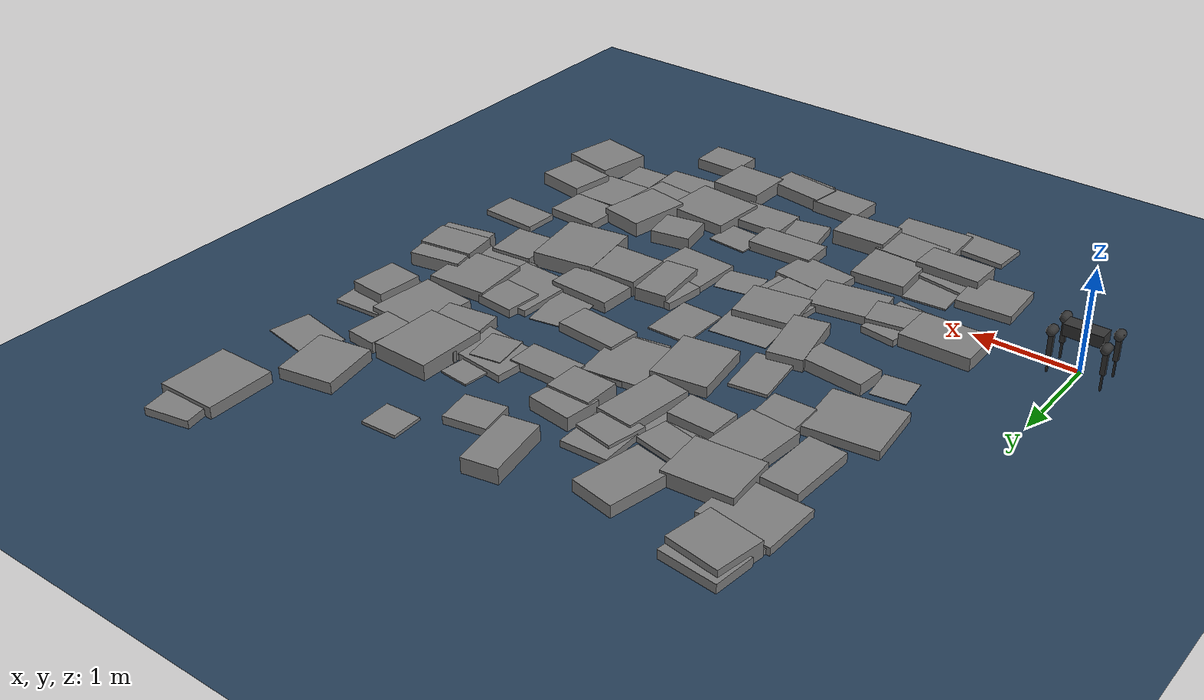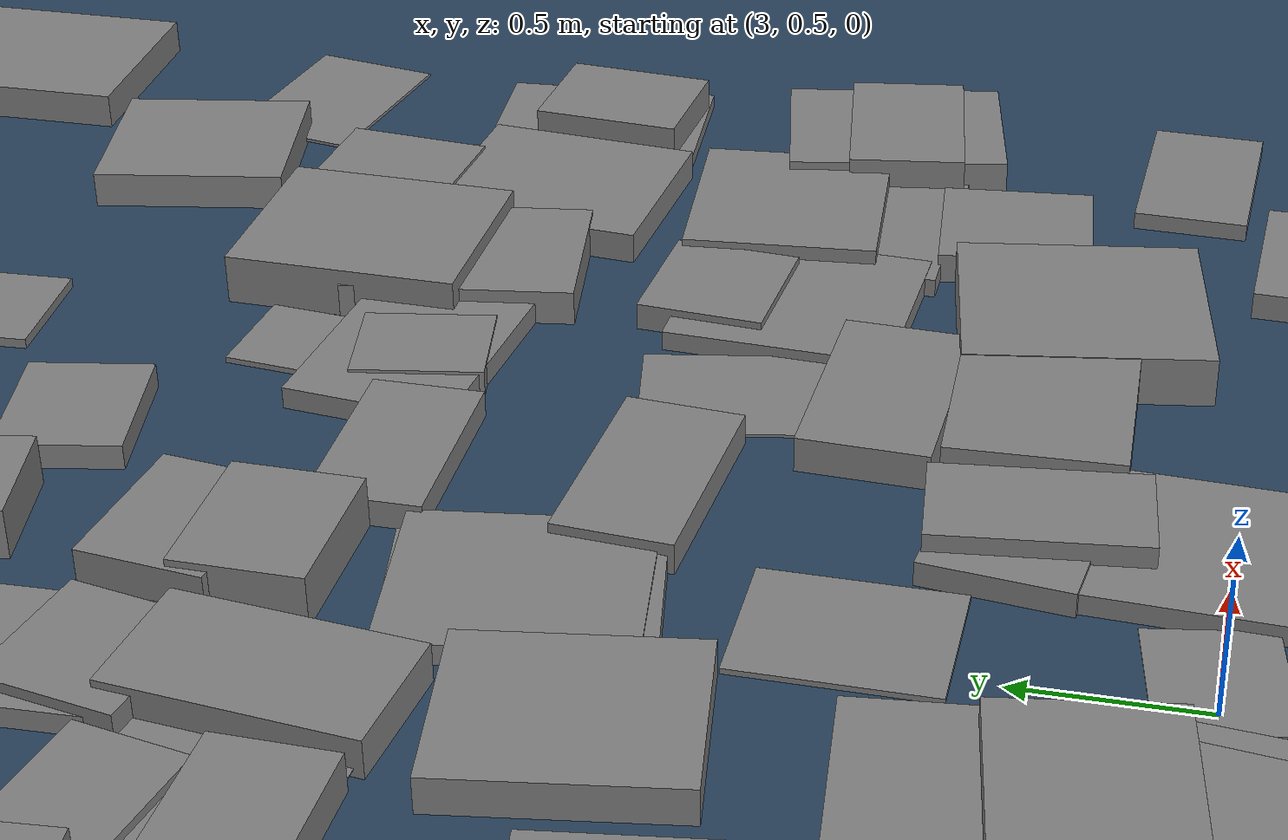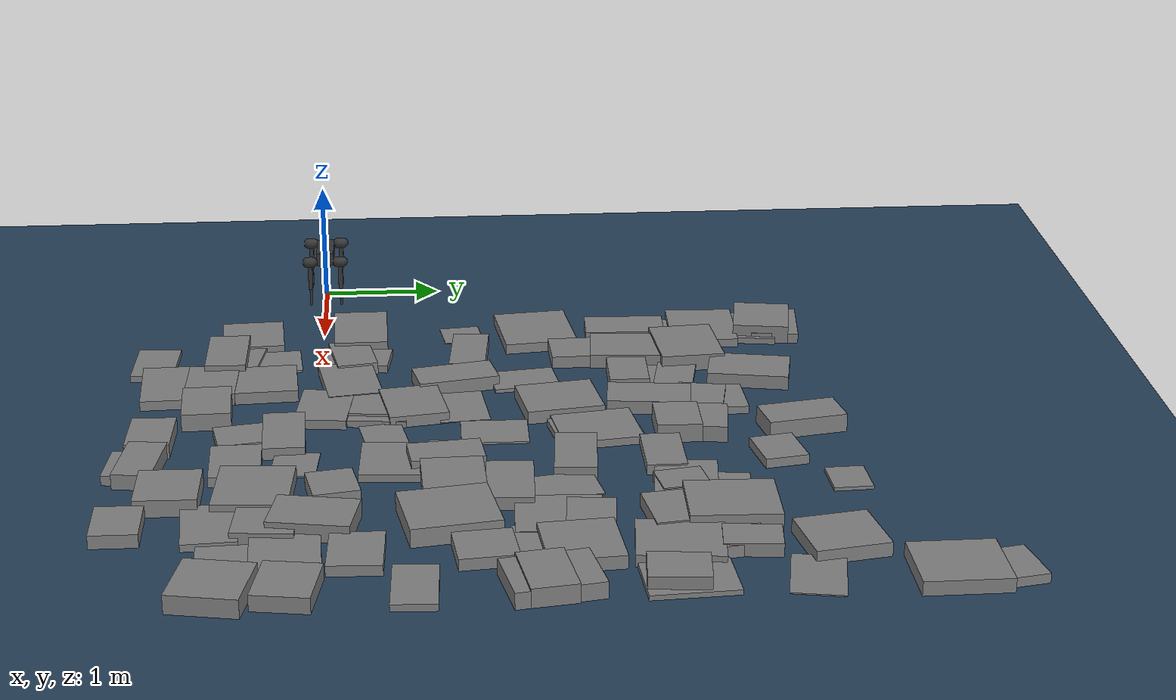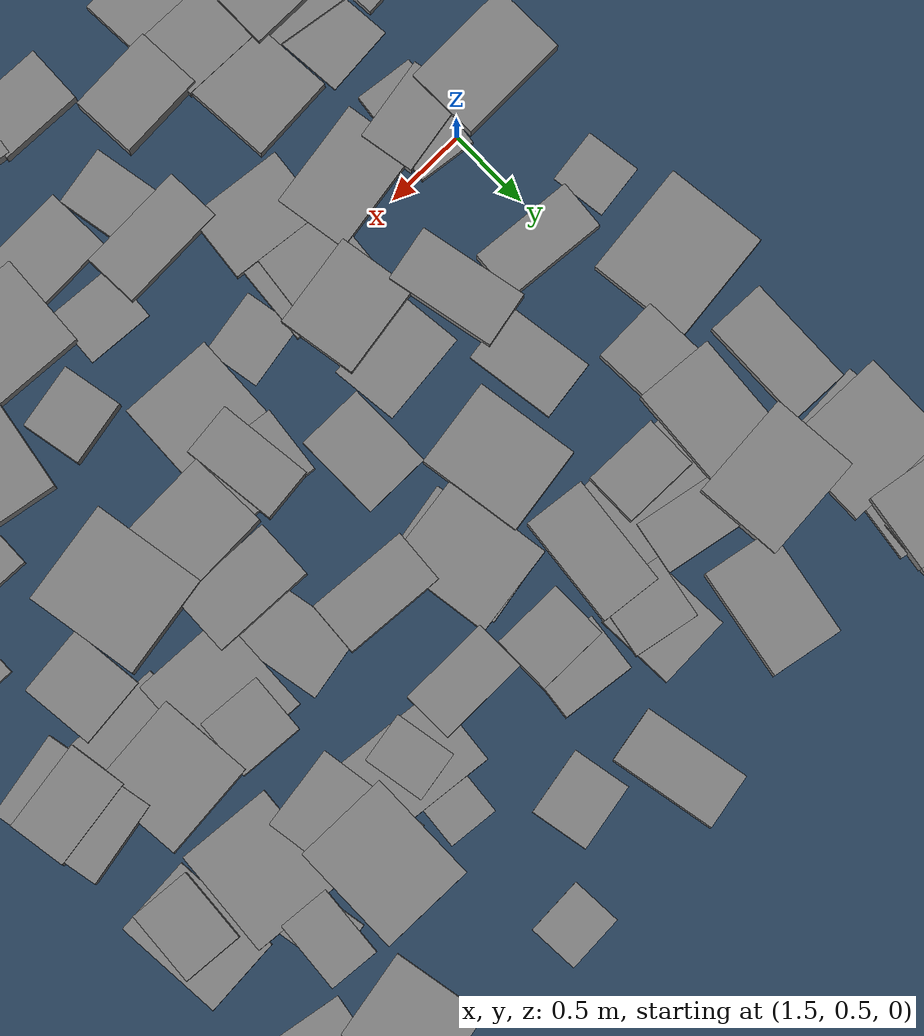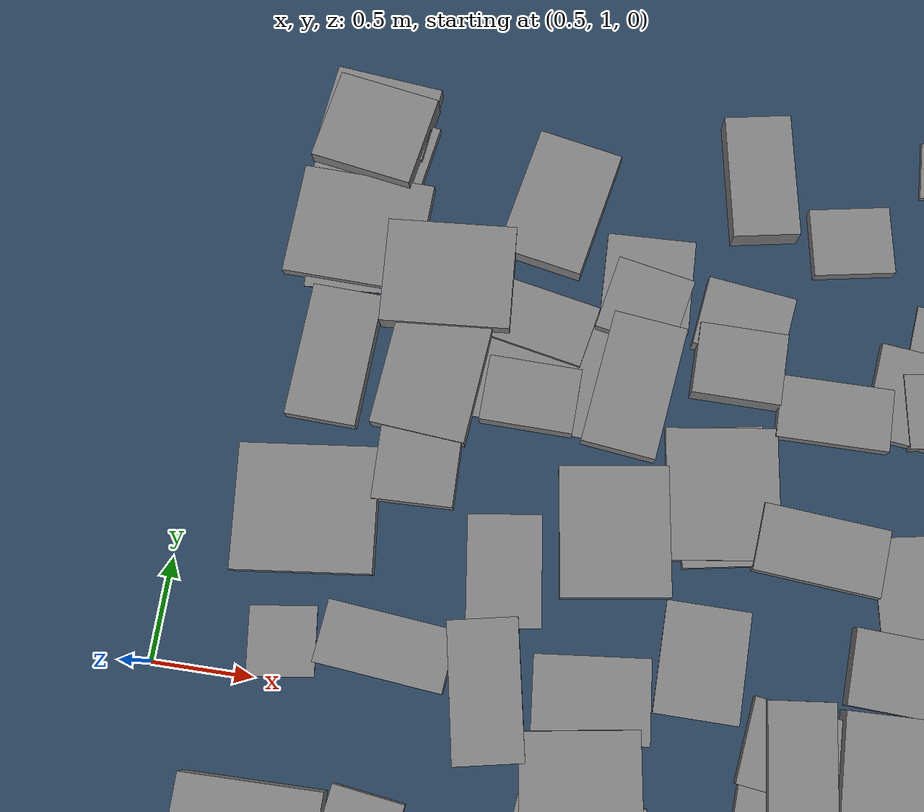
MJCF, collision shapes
<mujoco model="aliengo scene">
  <include file="aliengo.xml" />

  <statistic center="0 0 0.1" extent="0.8" />

  <visual>
    <headlight diffuse="0.6 0.6 0.6" ambient="0.3 0.3 0.3" specular="0 0 0" />
    <rgba haze="0.15 0.25 0.35 1" />
    <global azimuth="-130" elevation="-20" />
  </visual>

  <asset>
    <texture type="skybox" builtin="gradient" rgb1="0.3 0.5 0.7" rgb2="0 0 0" width="512" height="3072" />
    <texture type="2d" name="groundplane" builtin="checker" mark="edge" rgb1="0.2 0.3 0.4" rgb2="0.1 0.2 0.3" markrgb="0.8 0.8 0.8" width="300" height="300" />
    <material name="groundplane" texture="groundplane" texuniform="true" texrepeat="5 5" reflectance="0.2" />
  </asset>

  <worldbody>
    <light pos="0 0 1.5" dir="0 0 -1" directional="true" />
    <geom name="floor" size="0 0 0.05" type="plane" material="groundplane" />
  <geom pos="1.1 -0.6082269992179202 0.02" type="box" size="0.2705526752143288 0.25897663659937936 0.05295684991736309" quat="0.9995743283582694 0.0 0.0 0.029174682296719767" /><geom pos="1.1 0.3173696390747409 0.02" type="box" size="0.34273255210020587 0.22668830376515553 0.09896562976033307" quat="0.9999833017187217 0.0 0.0 0.005778951784178585" /><geom pos="1.1 1.1873817873215602 0.02" type="box" size="0.16420721163957738 0.16742585994030812 0.002527299680040715" quat="0.9977880966676552 0.0 0.0 0.06647491367679996" /><geom pos="1.1 1.8273028086490841 0.02" type="box" size="0.3457236684465528 0.30983171284334476 0.05768492028161648" quat="0.9984264804589074 0.0 0.0 0.05607640429306257" /><geom pos="1.1 2.601536498083301 0.02" type="box" size="0.17867065748180927 0.33893378340991676 0.06523104021875896" quat="0.9998543518459778 0.0 0.0 -0.017066783371788637" /><geom pos="1.1 3.2184704949580585 0.02" type="box" size="0.24123006644330972 0.2636867897737297 0.0023487250545443927" quat="0.9997232505625382 0.0 0.0 0.023524929004620103" /><geom pos="1.1 3.2786959665873283 0.02" type="box" size="0.33874961570292483 0.2863640598206967 0.04493848757172325" quat="0.9999207015512163 0.0 0.0 -0.01259327635381275" /><geom pos="1.1 3.642406737529951 0.02" type="box" size="0.2833533430891335 0.28412757392363186 0.026297820134230113" quat="0.9972473499234326 0.0 0.0 -0.07414663222757192" /><geom pos="1.1 3.8037162554149475 0.02" type="box" size="0.26403935408357593 0.23772030269246408 0.12354672975740327" quat="0.9968343050291777 0.0 0.0 -0.07950703312912821" /><geom pos="1.1 3.914091396579253 0.02" type="box" size="0.2806216650930797 0.20065832050795643 0.058288846607038286" quat="0.9986939188465846 0.0 0.0 -0.05109262626692192" /><geom pos="1.6 -1.4028987242069388 0.02" type="box" size="0.28126591789305466 0.17763659026972276 0.024572795210006687" quat="0.9996553581817902 0.0 0.0 -0.026251949612109988" /><geom pos="1.6 -0.7980532044618928 0.02" type="box" size="0.3175889814997608 0.1692196815787926 0.12205743312667447" quat="0.9999803451212234 0.0 0.0 -0.006269718593283766" /><geom pos="1.6 -0.6793254855076487 0.02" type="box" size="0.29785271587966033 0.1578375584508641 0.0353508703220512" quat="0.9971163739076413 0.0 0.0 -0.07588765963763122" /><geom pos="1.6 -0.4139359945682033 0.02" type="box" size="0.21359663587879518 0.232852598902934 0.008018437043598045" quat="0.9992591811521393 0.0 0.0 0.038484917606201714" /><geom pos="1.6 0.2534743853954784 0.02" type="box" size="0.2546496106933399 0.16878810215168832 0.07199331194452241" quat="0.9963163592539387 0.0 0.0 0.08575378873832049" /><geom pos="1.6 0.27358193158297195 0.02" type="box" size="0.1763595724808784 0.2932654408237131 0.03617576161840014" quat="0.9979933172265175 0.0 0.0 -0.06331933963025445" /><geom pos="1.6 1.2357704767004103 0.02" type="box" size="0.31578800584347266 0.1509390952385094 0.08472706709952876" quat="0.9989422598737397 0.0 0.0 -0.04598218609794355" /><geom pos="1.6 2.1885194882173953 0.02" type="box" size="0.1997506287039916 0.26523146688356736 0.07400524140897988" quat="0.9998955950589743 0.0 0.0 0.014449878257610052" /><geom pos="1.6 2.58502522906438 0.02" type="box" size="0.23942507572352548 0.3192817344942256 0.08743490941468804" quat="0.9991794764567955 0.0 0.0 -0.04050152870601273" /><geom pos="1.6 3.086349610991082 0.02" type="box" size="0.32622063942223234 0.2662545745271717 0.1102169202318566" quat="0.9992587233363989 0.0 0.0 0.03849680293362416" /><geom pos="2.1 -1.1984251833254507 0.02" type="box" size="0.3412167269446448 0.2787980398459275 0.05298188106977246" quat="0.9997736182217178 0.0 0.0 0.021277037102349402" /><geom pos="2.1 -0.9001428573694199 0.02" type="box" size="0.282034707498537 0.20801552144208882 0.07725192862485519" quat="0.9998985237569854 0.0 0.0 -0.014245777921945828" /><geom pos="2.1 -0.46872442193544606 0.02" type="box" size="0.26399298214025296 0.26817455224963466 0.07179065610619735" quat="0.9995306268990166 0.0 0.0 0.03063536993180914" /><geom pos="2.1 0.23516416160492026 0.02" type="box" size="0.3293093191702126 0.2235123740095793 0.05448311565820335" quat="0.9969294942979583 0.0 0.0 0.07830442770889247" /><geom pos="2.1 1.1032902189731346 0.02" type="box" size="0.17004537746246023 0.3338965227489347 0.08928016244363893" quat="0.9950271602775137 0.0 0.0 0.09960396734100085" /><geom pos="2.1 1.6723909575877278 0.02" type="box" size="0.18249858693527496 0.27311191285676883 0.015477497856180189" quat="0.9975787831263353 0.0 0.0 0.06954546323219059" /><geom pos="2.1 2.538773283516357 0.02" type="box" size="0.23143665944519992 0.16383339909102762 0.08717859664307046" quat="0.9999568346638896 0.0 0.0 -0.009291329774287042" /><geom pos="2.1 2.710402960777797 0.02" type="box" size="0.3451043010005772 0.3211606684785222 0.0014642605231252465" quat="0.999607902777507 0.0 0.0 -0.028000726861175638" /><geom pos="2.1 2.9343276488381775 0.02" type="box" size="0.25420732124082585 0.16086759766785072 0.02499956561205001" quat="0.9953671563844347 0.0 0.0 -0.09614688757918351" /><geom pos="2.1 3.5558060503379414 0.02" type="box" size="0.21907033613938054 0.3356162586931182 0.0880518002404416" quat="0.995619705812064 0.0 0.0 -0.09349546191499868" /><geom pos="2.6 -0.910090023645429 0.02" type="box" size="0.26544571772083353 0.19757856427490172 0.11677674974059922" quat="0.9997402464637112 0.0 0.0 0.022791217621662953" /><geom pos="2.6 0.034282366338504566 0.02" type="box" size="0.29602440590335394 0.21238899909592038 0.049777632777011485" quat="0.9983166594844859 0.0 0.0 -0.057998684431089374" /><geom pos="2.6 0.46869899189662534 0.02" type="box" size="0.2979101590098575 0.2480917617235134 0.028426828496665404" quat="0.9987934279531521 0.0 0.0 -0.049108942949239905" /><geom pos="2.6 0.5359486233598738 0.02" type="box" size="0.21235917639882051 0.2892686977630919 0.04721897991156011" quat="0.9979476263554097 0.0 0.0 -0.06403542028911598" /><geom pos="2.6 0.7528456077583479 0.02" type="box" size="0.28587855469971346 0.24073936891120906 0.06707240138859027" quat="0.9968546879212563 0.0 0.0 0.07925106415320003" /><geom pos="2.6 1.1363095019302456 0.02" type="box" size="0.28261564062002015 0.20266447534743012 0.002581374933216085" quat="0.9986651065207021 0.0 0.0 0.05165273485494055" /><geom pos="2.6 1.9343563358428093 0.02" type="box" size="0.26766342271072113 0.31620969104723806 0.07862273044889359" quat="0.9972239151727612 0.0 0.0 0.07446115099506297" /><geom pos="2.6 2.665212142612967 0.02" type="box" size="0.18712718886119045 0.34055833139438896 0.08593603454847691" quat="0.9983817190250465 0.0 0.0 -0.05686776869715545" /><geom pos="2.6 3.0898976113644734 0.02" type="box" size="0.20078832851900516 0.1926623954734964 0.0647750892413329" quat="0.9955034567225628 0.0 0.0 -0.0947252218441772" /><geom pos="2.6 3.2074294673265067 0.02" type="box" size="0.22483399606684512 0.24271508487296214 0.03470358828684149" quat="0.9998493733257476 0.0 0.0 0.017355997813716734" /><geom pos="3.1 -1.3167201637859214 0.02" type="box" size="0.2534758214308228 0.17641362126903065 0.08960746014907421" quat="0.9997839360734415 0.0 0.0 -0.02078656223372505" /><geom pos="3.1 -0.5680565439353741 0.02" type="box" size="0.17896955186867544 0.2476112561297909 0.04445159223124445" quat="0.9961229019403699 0.0 0.0 0.087972519742793" /><geom pos="3.1 -0.27590901714282534 0.02" type="box" size="0.3307439479491867 0.16668448708840372 0.06902405874030082" quat="0.9998572792704726 0.0 0.0 0.01689441001775998" /><geom pos="3.1 0.5092438948803126 0.02" type="box" size="0.19816575598308936 0.17005878845309957 0.0020537036989342755" quat="0.996312359999853 0.0 0.0 0.08580024074280536" /><geom pos="3.1 1.3857491401969035 0.02" type="box" size="0.20634602115078982 0.26728203323726535 0.00799440826512264" quat="0.9999958686828723 0.0 0.0 -0.002874476854610391" /><geom pos="3.1 2.1849517275492953 0.02" type="box" size="0.21763179036736913 0.3423140309082997 0.028962703308900564" quat="0.9959649684200622 0.0 0.0 0.08974286422899891" /><geom pos="3.1 2.198188585308195 0.02" type="box" size="0.2760895873733582 0.3248575933249894 0.03662753556347459" quat="0.9975657561362213 0.0 0.0 0.06973207428700909" /><geom pos="3.1 2.837661101706918 0.02" type="box" size="0.21944670358644391 0.179628172189633 0.12272867372728165" quat="0.999990643142241 0.0 0.0 -0.004325925099596612" /><geom pos="3.1 3.0619781306816574 0.02" type="box" size="0.22371692122592352 0.17738005433711979 0.10276471664928069" quat="0.9980767304556466 0.0 0.0 -0.06199064544724872" /><geom pos="3.1 3.836025463380296 0.02" type="box" size="0.1695688968988068 0.32243830348433666 0.12161493612789129" quat="0.9957556342016285 0.0 0.0 0.09203649795441274" /><geom pos="3.6 -1.4465728182131747 0.02" type="box" size="0.2166290304057284 0.16622027799759936 0.05090514642672592" quat="0.9985663715870428 0.0 0.0 -0.05352757733624882" /><geom pos="3.6 -1.3569697839745694 0.02" type="box" size="0.29511887284211574 0.15228549172500622 0.09632259356284703" quat="0.9975081021901673 0.0 0.0 -0.07055200964516038" /><geom pos="3.6 -0.6299255212632411 0.02" type="box" size="0.2844095614707829 0.19907344197056895 0.052567433335012306" quat="0.9999341771577611 0.0 0.0 0.011473506518551946" /><geom pos="3.6 -0.17378495446276143 0.02" type="box" size="0.20406558104774292 0.1762965598582255 0.006921790052649743" quat="0.9992128412547012 0.0 0.0 -0.039669860999342645" /><geom pos="3.6 0.6147605578437574 0.02" type="box" size="0.28665626710953607 0.28912508912777146 0.03543985582277083" quat="0.9997116631390348 0.0 0.0 -0.024012300676630703" /><geom pos="3.6 0.9885736957763189 0.02" type="box" size="0.16136961528664806 0.2893994483449975 0.09733692449263792" quat="0.9984612956564191 0.0 0.0 0.05545305290157583" /><geom pos="3.6 1.033185997030433 0.02" type="box" size="0.2675199270392778 0.2045643804848934 0.04635659990223609" quat="0.9981650392718292 0.0 0.0 -0.06055207986079188" /><geom pos="3.6 1.9926193378638581 0.02" type="box" size="0.3099591769141236 0.16539128939732656 0.06485439360394075" quat="0.9992536461064166 0.0 0.0 -0.03862836707695851" /><geom pos="3.6 2.6740118484676962 0.02" type="box" size="0.2791140488912008 0.15707248715109817 0.053800304938507654" quat="0.9999979932540639 0.0 0.0 0.0020033691235646868" /><geom pos="3.6 3.5779958033959334 0.02" type="box" size="0.20551921954635322 0.17577211309326402 0.04908445956838679" quat="0.9958367682850747 0.0 0.0 0.09115443451384263" /><geom pos="4.1 -1.100974678296898 0.02" type="box" size="0.25876119001546527 0.24138228432915315 0.1102551762787362" quat="0.9999657275561434 0.0 0.0 -0.008279113063173643" /><geom pos="4.1 -0.4649136228497568 0.02" type="box" size="0.3308088785801916 0.28800500403824547 0.08745275678131459" quat="0.9994064535247389 0.0 0.0 -0.03444910235556082" /><geom pos="4.1 0.12607054247392813 0.02" type="box" size="0.1980040546759419 0.1821077644970513 0.09954893431466647" quat="0.9957862831777294 0.0 0.0 0.09170429780050023" /><geom pos="4.1 1.0349142608866666 0.02" type="box" size="0.32154452883871093 0.2414446906707714 0.11898430960409202" quat="0.999885237424119 0.0 0.0 0.01514965284464143" /><geom pos="4.1 1.4589465127765084 0.02" type="box" size="0.31310476375371377 0.1818828926897912 0.07861230488271255" quat="0.9997936950975663 0.0 0.0 -0.020311751356160077" /><geom pos="4.1 1.8156534031790512 0.02" type="box" size="0.20173681337788155 0.3198076616857022 0.004163078318337024" quat="0.9957896550430793 0.0 0.0 0.09166767646878139" /><geom pos="4.1 2.7609549366581305 0.02" type="box" size="0.15326570053674157 0.1870464650472368 0.05015743760045109" quat="0.9963164412387961 0.0 0.0 0.08575283620534331" /><geom pos="4.1 2.7940295281336365 0.02" type="box" size="0.32389770610932644 0.24083247938151037 0.04083761022103251" quat="0.9985718260676276 0.0 0.0 -0.053425725862767906" /><geom pos="4.1 3.0472207218564886 0.02" type="box" size="0.15312121288936564 0.23575914449964758 0.008509259246840026" quat="0.9987695869359595 0.0 0.0 -0.049591453011308684" /><geom pos="4.1 4.037565723417383 0.02" type="box" size="0.17621104624305156 0.15240724457953087 0.01443553714234351" quat="0.9997192616987649 0.0 0.0 0.02369383439792598" /><geom pos="4.6 -1.4346957928482198 0.02" type="box" size="0.23181081907461232 0.18259088520932107 0.07984521967081616" quat="0.9999981202744781 0.0 0.0 -0.001938929475366585" /><geom pos="4.6 -0.7688366752890321 0.02" type="box" size="0.3066468876627626 0.20767969946629877 0.03017732750957175" quat="0.9994718917742166 0.0 0.0 0.032495192771680725" /><geom pos="4.6 -0.35397980595546796 0.02" type="box" size="0.25346170344045776 0.23481779768716987 0.06933597608267737" quat="0.9990931959787015 0.0 0.0 -0.04257682173511863" /><geom pos="4.6 -0.0054604364629047275 0.02" type="box" size="0.22210911209717843 0.31573138291114755 0.11562086399414902" quat="0.9958806440577376 0.0 0.0 -0.09067382638416542" /><geom pos="4.6 0.9865508069515694 0.02" type="box" size="0.31299329587404945 0.3470982855286595 0.12112146308379397" quat="0.9967221290553172 0.0 0.0 0.080901158529625" /><geom pos="4.6 1.044907165932158 0.02" type="box" size="0.19988400821129024 0.17118123097644644 0.11886907638192426" quat="0.9985790414442157 0.0 0.0 -0.05329069326206338" /><geom pos="4.6 1.793695423472291 0.02" type="box" size="0.29614181982549526 0.32634404246676796 0.03405461193324531" quat="0.9997074695757256 0.0 0.0 -0.02418626210267934" /><geom pos="4.6 2.03143724948793 0.02" type="box" size="0.19756144850780777 0.1843706198095286 0.05616145608596726" quat="0.9992354453695604 0.0 0.0 -0.03909635171082214" /><geom pos="4.6 2.782202111374282 0.02" type="box" size="0.25047789149785227 0.3385167199395861 0.0792497122180826" quat="0.9973031828622793 0.0 0.0 0.07339183505518342" /><geom pos="4.6 3.0749961428148005 0.02" type="box" size="0.2899150120449503 0.3435931133208454 0.12430009870595993" quat="0.999953577353966 0.0 0.0 -0.00963551436125515" /><geom pos="5.1 -0.60461411571179 0.02" type="box" size="0.18047094113754608 0.23349727495920236 0.016411166059157004" quat="0.9997831974920582 0.0 0.0 0.020822055915689145" /><geom pos="5.1 -0.19788076987604164 0.02" type="box" size="0.3435589343597004 0.25937698033388445 0.034352946233449574" quat="0.9998298758210252 0.0 0.0 0.018445037698885194" /><geom pos="5.1 0.3079856139492667 0.02" type="box" size="0.26041565533839417 0.20433055352122917 0.05693051868125337" quat="0.9998068016387034 0.0 0.0 -0.019656026988847806" /><geom pos="5.1 1.2321443805700305 0.02" type="box" size="0.21207616519596229 0.2246069727761495 0.06562130528178303" quat="0.9987443055724464 0.0 0.0 0.050098024777546456" /><geom pos="5.1 1.5806203696035275 0.02" type="box" size="0.3224637093671805 0.1597380591951057 0.031705315532102846" quat="0.9999419729012696 0.0 0.0 -0.010772689094025185" /><geom pos="5.1 1.9223184844682595 0.02" type="box" size="0.2980195051235365 0.28610289622856516 0.0777980535707506" quat="0.9991136867890812 0.0 0.0 0.04209324020231435" /><geom pos="5.1 2.6326553134424726 0.02" type="box" size="0.28524849645549255 0.3258469526062654 0.0679597567285119" quat="0.9990557598017029 0.0 0.0 -0.04344639003464153" /><geom pos="5.1 3.0385976354107562 0.02" type="box" size="0.15157682070168807 0.22453581396419908 0.06631715182034773" quat="0.9964385542695009 0.0 0.0 0.08432204673338392" /><geom pos="5.1 3.1543008687378498 0.02" type="box" size="0.15486263994203153 0.21852219686831806 0.07777888235497436" quat="0.9990239393937274 0.0 0.0 -0.04417203321376658" /><geom pos="5.1 3.8014975226318857 0.02" type="box" size="0.26542804880406834 0.2890540011809372 0.08399464257447779" quat="0.9959731811323911 0.0 0.0 0.0896516729627805" /><geom pos="5.6 -0.6863213502981366 0.02" type="box" size="0.2700784474195279 0.2677479219940576 0.1203462899800303" quat="0.9953353713779168 0.0 0.0 -0.09647537760477702" /><geom pos="5.6 -0.16636897572729836 0.02" type="box" size="0.2519614393243168 0.2167929739193618 0.09885502040342561" quat="0.996757488611042 0.0 0.0 -0.08046433307875363" /><geom pos="5.6 0.7205918054901193 0.02" type="box" size="0.2887912821869095 0.1681771464064819 0.02846993769223262" quat="0.9998390881225072 0.0 0.0 -0.017938725215388415" /><geom pos="5.6 1.6429397872867524 0.02" type="box" size="0.2737652336482753 0.1766922941869869 0.1225725165984103" quat="0.9972367808505237 0.0 0.0 0.07428864596211515" /><geom pos="5.6 1.6789736047153219 0.02" type="box" size="0.2582761587514272 0.33466121357783263 0.1037371710754179" quat="0.9956173617582609 0.0 0.0 0.09352042004567876" /><geom pos="5.6 2.5652782708018815 0.02" type="box" size="0.184954400832188 0.22782693542023716 0.1190178371619276" quat="0.999200337938382 0.0 0.0 -0.03998355491727862" /><geom pos="5.6 2.6417650398321673 0.02" type="box" size="0.23927888309664058 0.3315751188708652 0.020028808290017908" quat="0.9994808678722888 0.0 0.0 0.03221792602351033" /><geom pos="5.6 3.549497997317207 0.02" type="box" size="0.2892926289305001 0.19947975110783073 0.004951940322439716" quat="0.9961295189379453 0.0 0.0 -0.08789756253991075" /><geom pos="5.6 4.547460248645881 0.02" type="box" size="0.2979767835658202 0.329612471442747 0.08407278891206517" quat="0.9999832496569163 0.0 0.0 0.005787953489224539" /><geom pos="5.6 4.87544824955396 0.02" type="box" size="0.22243781178787786 0.2441297898427819 0.04728064686543272" quat="0.995404602413459 0.0 0.0 0.0957584330182141" /></worldbody>
</mujoco>

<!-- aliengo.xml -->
<mujoco model="aliengo_description">
    <compiler angle="radian" autolimits="true"/>

    <default>
        <default class="visual">
            <geom type="mesh" contype="0" conaffinity="0" group="2"/>
        </default>
        <default class="collision">
            <geom group="3" rgba="0.2 0.2 0.2 0.5"/>
        </default>

        <default class="hip">
            <motor ctrlrange="-35.278 35.278"/>
        </default>
        <default class="thigh">
            <motor ctrlrange="-35.278 35.278"/>
        </default>
        <default class="calf">
            <motor ctrlrange="-44.4 44.4"/>
        </default>

    </default>

    <asset>
        <mesh name="base" file="assets/base.stl"/>
        <mesh name="hip" file="assets/hip.stl"/>
        <mesh name="thigh_mirror" file="assets/thigh_mirror.stl"/>
        <mesh name="calf" file="assets/calf.stl"/>
        <mesh name="thigh" file="assets/thigh.stl"/>
    </asset>

    <worldbody>

        <body name="base" pos="0 0 0.4">
            <inertial pos="0.00846406 0.00404455 -0.000762916" quat="-3.12625e-05 0.708321 0.00247254 0.705886"
                      mass="13.042" diaginertia="0.174706 0.161175 0.033357"/>
            <freejoint/>

            <!-- base visual mesh and collision -->
            <geom type="mesh" class="visual" rgba="0.2 0.2 0.2 1" mesh="base"/>
            <geom type="box" class="collision" size="0.18 0.075 0.056"/>

            <!-- modify this to add payload -->

            <!-- imu and camera -->
            <site name="imu" pos="0 0 0"/>
            <camera name="robotcam" pos="0.31 -0.005 0.00292751" quat="0.4 0.4 -0.4 -0.4"/>

            <!-- FL leg -->
            <body name="FL_hip" pos="0.2399 0.051 0">
                <inertial pos="-0.022191 0.015144 -1.5e-05" quat="-0.0135493 0.706835 0.0117635 0.707151" mass="1.993"
                          diaginertia="0.00558695 0.00491009 0.00290132"/>
                <joint name="FL_hip_joint" pos="0 0 0" axis="1 0 0" limited="true" range="-1.22173 1.22173" armature="0.0062" frictionloss="0.4168" damping="0.1744"/>

                <!-- FL_hip visual mesh and collision -->
                <geom type="mesh" class="visual" rgba="0.2 0.2 0.2 1" mesh="hip"/>
                <geom type="capsule" class="collision" size="0.046 0.0209" pos="0 0.083 0"
                      quat="0.707107 0.707107 0 0"/>

                <body name="FL_thigh" pos="0 0.083 0">
                    <inertial pos="-0.005607 -0.003877 -0.048199" quat="0.717987 -0.031246 -0.0335669 0.694544"
                              mass="0.639" diaginertia="0.0058474 0.00571186 0.000324584"/>
                    <joint name="FL_thigh_joint" pos="0 0 0" axis="0 1 0" armature="0.0172" frictionloss="0.3451" damping="0.1396"/>

                    <!-- FL_thigh visual mesh and collision -->
                    <geom type="mesh" class="visual" rgba="0.2 0.2 0.2 1" mesh="thigh"/>
                    <geom type="box" class="collision" size="0.125 0.0187 0.0215" pos="0 0 -0.125"
                          quat="0.707107 0 0.707107 0"/>

                    <body name="FL_calf" pos="0 0 -0.25">
                        <inertial pos="0.00215606 4.88427e-05 -0.166671" quat="0.707462 0.00517582 0.00535172 0.706712"
                                  mass="0.267" diaginertia="0.00690975 0.00689712 5.4885e-05"/>
                        <joint name="FL_calf_joint" pos="0 0 0" axis="0 1 0" limited="true" range="-2.77507 -0.645772" armature="0.0269" frictionloss="0.4909" damping="0.1588"/>

                        <!-- FL_calf visual mesh and collision -->
                        <geom type="mesh" class="visual" rgba="0 0 0 1" mesh="calf"/>
                        <geom type="box" class="collision" size="0.125 0.0104 0.008" pos="0 0 -0.125"
                              quat="0.707107 0 0.707107 0"/>

                        <!-- FL_foot only collision -->
                        <!--geom name="FL" class="collision" size="0.0265" pos="0 0 -0.25"/-->

                        <body name="FL_foot" pos="0 0 -0.25">
                            <!-- FL_foot only collision -->
                            <geom name="FL" class="collision" size="0.0265"/>
                        </body>

                    </body>
                </body>
            </body>

            <!-- FR leg -->
            <body name="FR_hip" pos="0.2399 -0.051 0">
                <inertial pos="-0.022191 -0.015144 -1.5e-05" quat="0.0135493 0.706835 -0.0117635 0.707151" mass="1.993"
                          diaginertia="0.00558695 0.00491009 0.00290132"/>
                <joint name="FR_hip_joint" pos="0 0 0" axis="1 0 0" limited="true" range="-1.22173 1.22173" armature="0.0096" frictionloss="0.4756" damping="0.1"/>

                <!-- FR_hip visual mesh and collision -->
                <geom type="mesh" mesh="hip" class="visual" quat="0 1 0 0" rgba="0.2 0.2 0.2 1"/>
                <geom type="capsule" class="collision" size="0.046 0.0209" pos="0 -0.083 0"
                      quat="0.707107 0.707107 0 0"/>

                <body name="FR_thigh" pos="0 -0.083 0">
                    <inertial pos="-0.005607 0.003877 -0.048199" quat="0.694544 -0.0335669 -0.031246 0.717987"
                              mass="0.639" diaginertia="0.0058474 0.00571186 0.000324584"/>
                    <joint name="FR_thigh_joint" pos="0 0 0" axis="0 1 0" armature="0.0126" frictionloss="0.2558" damping="0.2542"/>

                    <!-- FR_thigh visual mesh and collision -->
                    <geom type="mesh" mesh="thigh_mirror" class="visual" rgba="0.2 0.2 0.2 1"/>
                    <geom type="box" class="collision" size="0.125 0.0187 0.0215" pos="0 0 -0.125"
                          quat="0.707107 0 0.707107 0"/>

                    <body name="FR_calf" pos="0 0 -0.25">
                        <inertial pos="0.00215606 4.88427e-05 -0.166671" quat="0.707462 0.00517582 0.00535172 0.706712"
                                  mass="0.267" diaginertia="0.00690975 0.00689712 5.4885e-05"/>
                        <joint name="FR_calf_joint" pos="0 0 0" axis="0 1 0" limited="true" range="-2.77507 -0.645772" armature="0.0170" frictionloss="0.1965" damping="0.3150"/>

                        <!-- FR_calf visual mesh and collision -->
                        <geom type="mesh" mesh="calf" class="visual" rgba="0 0 0 1"/>
                        <geom type="box" class="collision" size="0.125 0.0104 0.008" pos="0 0 -0.125"
                              quat="0.707107 0 0.707107 0"/>

                        <!-- FR_foot only collision -->
                        <!--geom name="FR" class="collision" size="0.0265" pos="0 0 -0.25"/-->

                        <body name="FR_foot" pos="0 0 -0.25">
                            <!-- FR_foot only collision -->
                            <geom name="FR" class="collision" size="0.0265"/>
                        </body>

                    </body>
                </body>
            </body>

            <!-- RL leg -->
            <body name="RL_hip" pos="-0.2399 0.051 0">
                <inertial pos="0.022191 0.015144 -1.5e-05" quat="0.0117635 0.707151 -0.0135493 0.706835" mass="1.993"
                          diaginertia="0.00558695 0.00491009 0.00290132"/>
                <joint name="RL_hip_joint" pos="0 0 0" axis="1 0 0" limited="true" range="-1.22173 1.22173" armature="0.0097" frictionloss="0.3773" damping="0.1832"/>

                <!-- RL_hip visual mesh and collision -->
                <geom type="mesh" class="visual" quat="0 0 1 0" rgba="0.2 0.2 0.2 1" mesh="hip"/>
                <geom type="capsule" class="collision" size="0.046 0.0209" pos="0 0.083 0"
                      quat="0.707107 0.707107 0 0"/>

                <body name="RL_thigh" pos="0 0.083 0">
                    <inertial pos="-0.005607 -0.003877 -0.048199" quat="0.717987 -0.031246 -0.0335669 0.694544"
                              mass="0.639" diaginertia="0.0058474 0.00571186 0.000324584"/>
                    <joint name="RL_thigh_joint" pos="0 0 0" axis="0 1 0" armature="0.0160" frictionloss="0.2892" damping="0.1884"/>

                    <!-- RL_thigh visual mesh and collision -->
                    <geom type="mesh" class="visual" rgba="0.2 0.2 0.2 1" mesh="thigh"/>
                    <geom type="box" class="collision" size="0.125 0.0187 0.0215" pos="0 0 -0.125"
                          quat="0.707107 0 0.707107 0"/>

                    <body name="RL_calf" pos="0 0 -0.25">
                        <inertial pos="0.00215606 4.88427e-05 -0.166671" quat="0.707462 0.00517582 0.00535172 0.706712"
                                  mass="0.267" diaginertia="0.00690975 0.00689712 5.4885e-05"/>
                        <joint name="RL_calf_joint" pos="0 0 0" axis="0 1 0" limited="true" range="-2.77507 -0.645772" armature="0.0233" frictionloss="0.3549" damping="0.2531"/>

                        <!-- RL_calf visual mesh and collision -->
                        <geom type="mesh" class="visual" rgba="0 0 0 1" mesh="calf"/>
                        <geom type="box" class="collision" size="0.125 0.0104 0.008" pos="0 0 -0.125"
                              quat="0.707107 0 0.707107 0"/>

                        <!-- RL_foot only collision -->
                        <!--geom name="RL" class="collision" size="0.0265" pos="0 0 -0.25"/-->

                        <body name="RL_foot" pos="0 0 -0.25">
                            <!-- RL_foot only collision -->
                            <geom name="RL" class="collision" size="0.0265"/>
                        </body>

                    </body>
                </body>
            </body>

            <!-- RR leg -->
            <body name="RR_hip" pos="-0.2399 -0.051 0">
                <inertial pos="0.022191 -0.015144 -1.5e-05" quat="-0.0117635 0.707151 0.0135493 0.706835" mass="1.993"
                          diaginertia="0.00558695 0.00491009 0.00290132"/>
                <joint name="RR_hip_joint" pos="0 0 0" axis="1 0 0" limited="true" range="-1.22173 1.22173" armature="0.0119" frictionloss="0.6511" damping="0.2535"/>

                <!-- RR_hip visual mesh and collision -->
                <geom type="mesh" class="visual" quat="0 0 0 -1" rgba="0.2 0.2 0.2 1" mesh="hip"/>
                <geom type="capsule" class="collision" size="0.046 0.0209" pos="0 -0.083 0"
                      quat="0.707107 0.707107 0 0"/>

                <body name="RR_thigh" pos="0 -0.083 0">
                    <inertial pos="-0.005607 0.003877 -0.048199" quat="0.694544 -0.0335669 -0.031246 0.717987"
                              mass="0.639" diaginertia="0.0058474 0.00571186 0.000324584"/>
                    <joint name="RR_thigh_joint" pos="0 0 0" axis="0 1 0" armature="0.0150" frictionloss="0.2998" damping="0.2233"/>

                    <!-- RR_thigh visual mesh and collision -->
                    <geom type="mesh" class="visual" rgba="0.2 0.2 0.2 1" mesh="thigh_mirror"/>
                    <geom type="box" class="collision" size="0.125 0.0187 0.0215" pos="0 0 -0.125"
                          quat="0.707107 0 0.707107 0"/>

                    <body name="RR_calf" pos="0 0 -0.25">
                        <inertial pos="0.00215606 4.88427e-05 -0.166671" quat="0.707462 0.00517582 0.00535172 0.706712"
                                  mass="0.267" diaginertia="0.00690975 0.00689712 5.4885e-05"/>
                        <joint name="RR_calf_joint" pos="0 0 0" axis="0 1 0" limited="true" range="-2.77507 -0.645772" armature="0.0249" frictionloss="0.4363" damping="0.3365"/>

                        <!-- RR_calf visual mesh and collision -->
                        <geom type="mesh" class="visual" rgba="0 0 0 1" mesh="calf"/>
                        <geom type="box" class="collision" size="0.125 0.0104 0.008" pos="0 0 -0.125"
                              quat="0.707107 0 0.707107 0"/>

                        <!-- RR_foot only collision -->
                        <!--geom name="RR" class="collision" size="0.0265" pos="0 0 -0.25"/-->

                        <body name="RR_foot" pos="0 0 -0.25">
                            <!-- RR_foot only collision -->
                            <geom name="RR" class="collision" size="0.0265"/>
                        </body>

                    </body>
                </body>
            </body>
        </body>
    </worldbody>

    <actuator>
        <motor name="FL_hip"   class="hip"    gear="1" joint="FL_hip_joint"/>
        <motor name="FL_thigh" class="thigh"  gear="1" joint="FL_thigh_joint"/>
        <motor name="FL_calf"  class="calf"   gear="1" joint="FL_calf_joint"/>
        <motor name="FR_hip"   class="hip"    gear="1" joint="FR_hip_joint"/>
        <motor name="FR_thigh" class="thigh"  gear="1" joint="FR_thigh_joint"/>
        <motor name="FR_calf"  class="calf"   gear="1" joint="FR_calf_joint"/>
        <motor name="RL_hip"   class="hip"    gear="1" joint="RL_hip_joint"/>
        <motor name="RL_thigh" class="thigh"  gear="1" joint="RL_thigh_joint"/>
        <motor name="RL_calf"  class="calf"   gear="1" joint="RL_calf_joint"/>
        <motor name="RR_hip"   class="hip"    gear="1" joint="RR_hip_joint"/>
        <motor name="RR_thigh" class="thigh"  gear="1" joint="RR_thigh_joint"/>
        <motor name="RR_calf"  class="calf"   gear="1" joint="RR_calf_joint" />
    </actuator>

    <sensor>
        <accelerometer name="imu_acc" site="imu"/>
        <gyro name="imu_gyro" site="imu"/>
        <framepos name="imu_pos" objtype="site" objname="imu"/>
        <framequat name="imu_quat" objtype="site" objname="imu"/>

        <jointpos name="FL_hip_joint_pos" joint="FL_hip_joint"/>
        <jointpos name="FL_thigh_joint_pos" joint="FL_thigh_joint"/>
        <jointpos name="FL_calf_joint_pos" joint="FL_calf_joint"/>
        <jointpos name="FR_hip_joint_pos" joint="FR_hip_joint"/>
        <jointpos name="FR_thigh_joint_pos" joint="FR_thigh_joint"/>
        <jointpos name="FR_calf_joint_pos" joint="FR_calf_joint"/>
        <jointpos name="RL_hip_joint_pos" joint="RL_hip_joint"/>
        <jointpos name="RL_thigh_joint_pos" joint="RL_thigh_joint"/>
        <jointpos name="RL_calf_joint_pos" joint="RL_calf_joint"/>
        <jointpos name="RR_hip_joint_pos" joint="RR_hip_joint"/>
        <jointpos name="RR_thigh_joint_pos" joint="RR_thigh_joint"/>
        <jointpos name="RR_calf_joint_pos" joint="RR_calf_joint"/>
    </sensor>

    <keyframe>
        <key name="home" qpos="0 0 0.35 1 0 0 0 0 0.9 -1.8 0 0.9 -1.8 0 0.9 -1.8 0 0.9 -1.8"/>
        <key name="down" qpos="0 0 0.05 1 0 0 0 0.0 1.21 -2.794 0.0 1.21 -2.794 0.0 1.21 -2.794 0.0 1.21 -2.794"/>
    </keyframe>
</mujoco>
